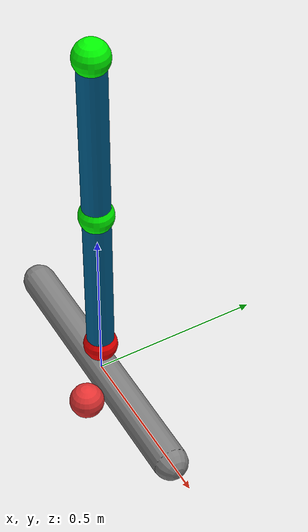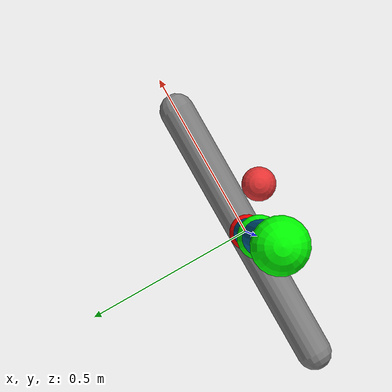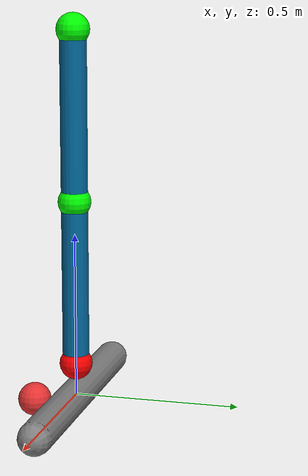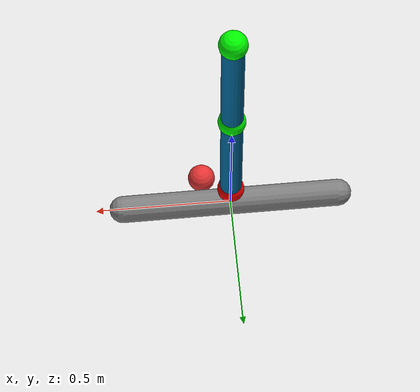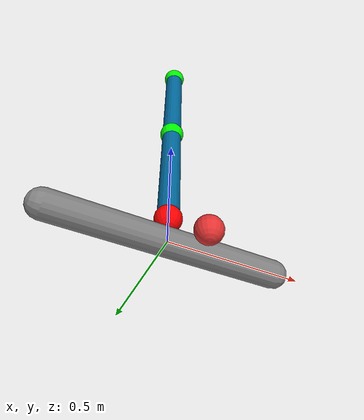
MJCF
<mujoco>
  <option gravity="0 0 -9.81" integrator="RK4" timestep="0.01"/>
  <worldbody>
    <camera name="view_camera" pos="0 0 2" mode="targetbody" target="reacher"/>
    <light name="top" pos="0 0 1"/>
    <body name="reacher" pos="0 0 0">
      <body name="base_slider" pos="0 0 0">
        <joint name="base_slider" type="slide" pos="0 0 0" range="-2 2" limited="true" axis="-1 0 0"/>
        <geom name="base" pos="0 0 0" size="0.05" rgba="1 0 0 1"/>
        <body name="shoulder_pan_joint" pos="0 0 0">
          <geom name="pan_joint_base" type="capsule" fromto="-0.4 0 0 0.4 0 0" size="0.05" contype="1" conaffinity="1" />
          <joint name="base_pan_joint" type="hinge" pos="0 0 0" axis="0 0 1" damping="1.0" />
          <body name="shoulder_to_elbow" pos="0 0 0.1">
            <geom name="shoulder" pos="0 0 0" size="0.05" rgba="1 0 0 1"/>
            <joint name="joint0" type="hinge" pos="0 0 0" range="-90 90" axis="0 1 0" />
            <geom fromto="0 0 0 0 0 0.5" name="link0" rgba="0.0 0.4 0.6 1" size=".04" type="capsule"/>
            <geom name="green_sphere" pos="0 0 0.5" size=".05" rgba="0 1 0 1"/>
            <body name="tip" pos="0 0 0.51">
                <joint name="joint1" type="hinge" pos="0 0 0" range="-170 170" axis="0 1 0" />
                <geom fromto="0 0 0 0 0 0.5" name="link1" rgba="0.0 0.4 0.6 1" size=".04" type="capsule"/>
                <geom name="tip" pos="0 0 0.5" size=".05" rgba="0 1 0 1"/>
            </body>
          </body>
        </body>

      </body>

    </body>
    <body name="target" pos=".1 -.1 .01">
			<joint armature="0" axis="1 0 0" damping="0" limited="true" name="target_x" pos="0 0 0" range="-1 1" ref=".1" stiffness="0" type="slide"/>
			<joint armature="0" axis="0 0 1" damping="0" limited="true" name="target_y" pos="0 0 0" range="-1 1" ref="-.1" stiffness="0" type="slide"/>
			<geom conaffinity="0" contype="0" name="target" pos="0 0 0" rgba="0.9 0.2 0.2 1" size=".05" type="sphere"/>
		</body>
  </worldbody>
  <actuator>
        <!-- Actuators for Arm Joints -->
        <motor ctrllimited="true" ctrlrange="-0.2 0.2" gear="200.0" joint="joint0"/>
        <motor ctrllimited="true" ctrlrange="-0.2 0.2" gear="100.0" joint="joint1"/>
        <motor ctrllimited="true" ctrlrange="-0.2 0.2" gear="100.0" joint="base_slider"/>
        <motor joint="base_pan_joint" ctrlrange="-2.0 2.0" ctrllimited="true" />
  </actuator>

</mujoco>
